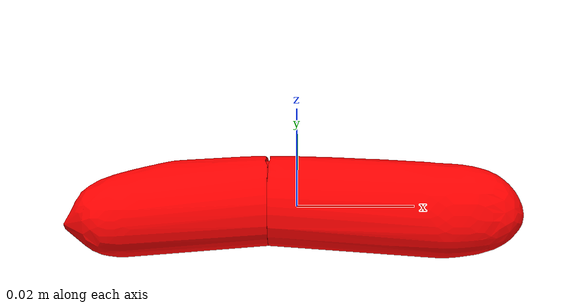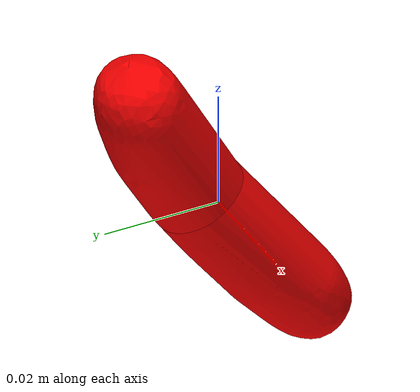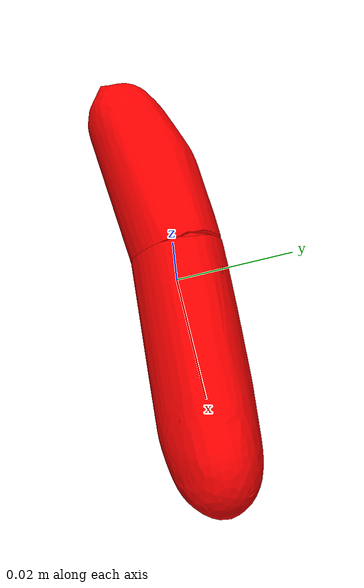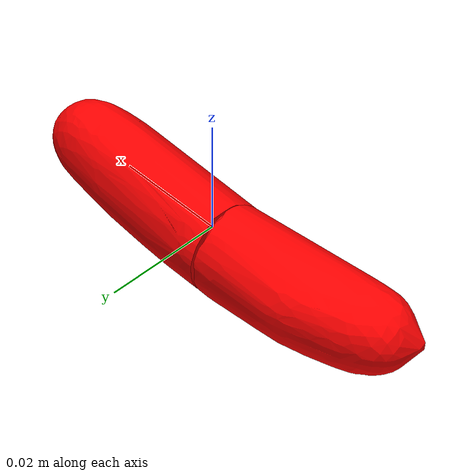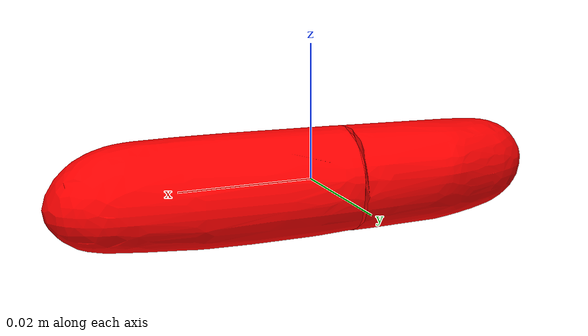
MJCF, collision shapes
<?xml version="1.0" ?>
<mujoco model="pickled_cucumber">
	<compiler meshdir="pickled_cucumber/meshes" texturedir="pickled_cucumber/textures" angle="radian" autolimits="true" balanceinertia="true" boundmass="0.000001" boundinertia="0.000001"/>
	<default>
		<default class="visual">
			<geom contype="0" conaffinity="0"/>
		</default>
		<default class="collision">
			<geom rgba="1.0 0.0 0.0 0.0"/>
		</default>
	</default>
	<asset>
		<mesh name="PickledCucumberFlesh" file="stl/PickledCucumberFlesh.stl" scale="1.0 1.0 1.0"/>
		<mesh name="PickledCucumberFlesh_001" file="stl/PickledCucumberFlesh_001.stl" scale="1.0 1.0 1.0"/>
		<mesh name="PickledCucumberFlesh_002" file="stl/PickledCucumberFlesh_002.stl" scale="1.0 1.0 1.0"/>
		<mesh name="PickledCucumberSeed" file="stl/PickledCucumberSeed.stl" scale="1.0 1.0 1.0"/>
		<mesh name="PickledCucumberSeed_001" file="stl/PickledCucumberSeed_001.stl" scale="1.0 1.0 1.0"/>
		<mesh name="PickledCucumberSeed_002" file="stl/PickledCucumberSeed_002.stl" scale="1.0 1.0 1.0"/>
		<mesh name="PickledCucumberSeed_003" file="stl/PickledCucumberSeed_003.stl" scale="1.0 1.0 1.0"/>
		<mesh name="PickledCucumberSeed_004" file="stl/PickledCucumberSeed_004.stl" scale="1.0 1.0 1.0"/>
		<mesh name="PickledCucumberSeed_005" file="stl/PickledCucumberSeed_005.stl" scale="1.0 1.0 1.0"/>
		<mesh name="PickledCucumberSeed_006" file="stl/PickledCucumberSeed_006.stl" scale="1.0 1.0 1.0"/>
		<mesh name="PickledCucumberSeed_007" file="stl/PickledCucumberSeed_007.stl" scale="1.0 1.0 1.0"/>
		<mesh name="PickledCucumberSeed_008" file="stl/PickledCucumberSeed_008.stl" scale="1.0 1.0 1.0"/>
		<mesh name="PickledCucumberSeed_009" file="stl/PickledCucumberSeed_009.stl" scale="1.0 1.0 1.0"/>
		<mesh name="PickledCucumberSeed_010" file="stl/PickledCucumberSeed_010.stl" scale="1.0 1.0 1.0"/>
		<mesh name="PickledCucumberSeed_011" file="stl/PickledCucumberSeed_011.stl" scale="1.0 1.0 1.0"/>
		<mesh name="PickledCucumberSeed_012" file="stl/PickledCucumberSeed_012.stl" scale="1.0 1.0 1.0"/>
		<mesh name="PickledCucumberSeed_013" file="stl/PickledCucumberSeed_013.stl" scale="1.0 1.0 1.0"/>
		<mesh name="PickledCucumberSeed_014" file="stl/PickledCucumberSeed_014.stl" scale="1.0 1.0 1.0"/>
		<mesh name="PickledCucumberSeed_015" file="stl/PickledCucumberSeed_015.stl" scale="1.0 1.0 1.0"/>
		<mesh name="PickledCucumberSeed_016" file="stl/PickledCucumberSeed_016.stl" scale="1.0 1.0 1.0"/>
		<mesh name="PickledCucumberSeed_017" file="stl/PickledCucumberSeed_017.stl" scale="1.0 1.0 1.0"/>
		<mesh name="PickledCucumberSeed_018" file="stl/PickledCucumberSeed_018.stl" scale="1.0 1.0 1.0"/>
		<mesh name="PickledCucumberSeed_019" file="stl/PickledCucumberSeed_019.stl" scale="1.0 1.0 1.0"/>
		<mesh name="PickledCucumberSeed_020" file="stl/PickledCucumberSeed_020.stl" scale="1.0 1.0 1.0"/>
		<mesh name="PickledCucumberSeed_021" file="stl/PickledCucumberSeed_021.stl" scale="1.0 1.0 1.0"/>
		<mesh name="PickledCucumberSeed_022" file="stl/PickledCucumberSeed_022.stl" scale="1.0 1.0 1.0"/>
		<mesh name="PickledCucumberSeed_023" file="stl/PickledCucumberSeed_023.stl" scale="1.0 1.0 1.0"/>
		<mesh name="PickledCucumberSeed_024" file="stl/PickledCucumberSeed_024.stl" scale="1.0 1.0 1.0"/>
		<mesh name="PickledCucumberSeed_025" file="stl/PickledCucumberSeed_025.stl" scale="1.0 1.0 1.0"/>
		<mesh name="PickledCucumberSeed_026" file="stl/PickledCucumberSeed_026.stl" scale="1.0 1.0 1.0"/>
		<mesh name="PickledCucumberSeed_027" file="stl/PickledCucumberSeed_027.stl" scale="1.0 1.0 1.0"/>
		<mesh name="PickledCucumberSeed_028" file="stl/PickledCucumberSeed_028.stl" scale="1.0 1.0 1.0"/>
		<mesh name="PickledCucumberSeed_029" file="stl/PickledCucumberSeed_029.stl" scale="1.0 1.0 1.0"/>
		<mesh name="PickledCucumberSeed_030" file="stl/PickledCucumberSeed_030.stl" scale="1.0 1.0 1.0"/>
		<mesh name="PickledCucumberSeed_031" file="stl/PickledCucumberSeed_031.stl" scale="1.0 1.0 1.0"/>
		<mesh name="PickledCucumberSeed_032" file="stl/PickledCucumberSeed_032.stl" scale="1.0 1.0 1.0"/>
		<mesh name="PickledCucumberPeel" file="obj/PickledCucumberPeel.obj" scale="1.0 1.0 1.0"/>
		<mesh name="PickledCucumberPeel_001" file="stl/PickledCucumberPeel_001.stl" scale="1.0 1.0 1.0"/>
		<mesh name="PickledCucumberPeel_002" file="stl/PickledCucumberPeel_002.stl" scale="1.0 1.0 1.0"/>
		<material name="M_PickledCucumberFlesh" rgba="0.6622999906539917 0.6575000286102295 0.5468000173568726 0.980400025844574" emission="0.0"/>
		<material name="M_PickledCucumberSeed" rgba="0.7447999715805054 0.7526999711990356 0.7329999804496765 1.0" emission="0.0"/>
		<material name="M_PickledCucumberPeel" texture="T_PickledCucumberPeel"/>
		<texture name="T_PickledCucumberPeel" type="2d" file="T_PickledCucumberPeel.png"/>
	</asset>
	<worldbody>
		<body name="pickled_cucumber" pos="0.0 0.0 0.0" quat="1.0 0.0 0.0 0.0">
			<body name="pickled_cucumber_flesh" pos="0.0 0.0 0.0" quat="1.0 0.0 0.0 0.0">
				<inertial mass="0.00818063784390688" pos="0.0007146873977035284 -0.0001645844749873504 0.00018500469741411507" quat="0.9983373880386353 0.0575854554772377 0.0006288753938861191 0.0024341389071196318" diaginertia="1.6322070450769388e-07 3.0060557492106454e-06 3.01512000078219e-06"/>
				<geom name="PickledCucumberFlesh" type="mesh" pos="0.0 0.0 0.0" quat="1.0 0.0 0.0 0.0" mesh="PickledCucumberFlesh" material="M_PickledCucumberFlesh" class="visual"/>
				<geom name="PickledCucumberFlesh_001" type="mesh" pos="0.0 0.0 0.0" quat="1.0 0.0 0.0 0.0" mesh="PickledCucumberFlesh_001" class="collision"/>
				<geom name="PickledCucumberFlesh_002" type="mesh" pos="0.0 0.0 0.0" quat="1.0 0.0 0.0 0.0" mesh="PickledCucumberFlesh_002" class="collision"/>
			</body>
			<body name="pickled_cucumber_peel" pos="0.0 0.0 0.0" quat="1.0 0.0 0.0 0.0">
				<inertial mass="0.020253026857972145" pos="0.0007119235233403742 0.00022078375332057476 -0.00022728988551534712" quat="0.9985897541046143 0.05298673361539841 0.0011286938097327948 0.0031084679067134857" diaginertia="4.903369017483783e-07 7.81192193244351e-06 7.839219506422523e-06"/>
				<geom name="PickledCucumberPeel" type="mesh" pos="0.0 0.0 0.0" quat="1.0 0.0 0.0 0.0" mesh="PickledCucumberPeel" material="M_PickledCucumberPeel" class="visual"/>
				<geom name="PickledCucumberPeel_001" type="mesh" pos="0.0 0.0 0.0" quat="1.0 0.0 0.0 0.0" mesh="PickledCucumberPeel_001" class="collision"/>
				<geom name="PickledCucumberPeel_002" type="mesh" pos="0.0 0.0 0.0" quat="1.0 0.0 0.0 0.0" mesh="PickledCucumberPeel_002" class="collision"/>
			</body>
			<body name="pickled_cucumber_seed" pos="0.0 0.0 0.0" quat="1.0 0.0 0.0 0.0">
				<inertial mass="0.00022778374841436744" pos="-0.0006211170111782849 -0.0004471162101253867 0.0004769424849655479" quat="0.9993292689323425 -0.03660851716995239 0.0008699760655872524 -0.00014944636495783925" diaginertia="3.3809444133225952e-09 7.695172854482735e-08 7.745622099264438e-08"/>
				<geom name="PickledCucumberSeed" type="mesh" pos="0.0 0.0 0.0" quat="1.0 0.0 0.0 0.0" mesh="PickledCucumberSeed" material="M_PickledCucumberSeed" class="visual"/>
				<geom name="PickledCucumberSeed_001" type="mesh" pos="0.0 0.0 0.0" quat="1.0 0.0 0.0 0.0" mesh="PickledCucumberSeed_001" class="collision"/>
				<geom name="PickledCucumberSeed_002" type="mesh" pos="0.0 0.0 0.0" quat="1.0 0.0 0.0 0.0" mesh="PickledCucumberSeed_002" class="collision"/>
				<geom name="PickledCucumberSeed_003" type="mesh" pos="0.0 0.0 0.0" quat="1.0 0.0 0.0 0.0" mesh="PickledCucumberSeed_003" class="collision"/>
				<geom name="PickledCucumberSeed_004" type="mesh" pos="0.0 0.0 0.0" quat="1.0 0.0 0.0 0.0" mesh="PickledCucumberSeed_004" class="collision"/>
				<geom name="PickledCucumberSeed_005" type="mesh" pos="0.0 0.0 0.0" quat="1.0 0.0 0.0 0.0" mesh="PickledCucumberSeed_005" class="collision"/>
				<geom name="PickledCucumberSeed_006" type="mesh" pos="0.0 0.0 0.0" quat="1.0 0.0 0.0 0.0" mesh="PickledCucumberSeed_006" class="collision"/>
				<geom name="PickledCucumberSeed_007" type="mesh" pos="0.0 0.0 0.0" quat="1.0 0.0 0.0 0.0" mesh="PickledCucumberSeed_007" class="collision"/>
				<geom name="PickledCucumberSeed_008" type="mesh" pos="0.0 0.0 0.0" quat="1.0 0.0 0.0 0.0" mesh="PickledCucumberSeed_008" class="collision"/>
				<geom name="PickledCucumberSeed_009" type="mesh" pos="0.0 0.0 0.0" quat="1.0 0.0 0.0 0.0" mesh="PickledCucumberSeed_009" class="collision"/>
				<geom name="PickledCucumberSeed_010" type="mesh" pos="0.0 0.0 0.0" quat="1.0 0.0 0.0 0.0" mesh="PickledCucumberSeed_010" class="collision"/>
				<geom name="PickledCucumberSeed_011" type="mesh" pos="0.0 0.0 0.0" quat="1.0 0.0 0.0 0.0" mesh="PickledCucumberSeed_011" class="collision"/>
				<geom name="PickledCucumberSeed_012" type="mesh" pos="0.0 0.0 0.0" quat="1.0 0.0 0.0 0.0" mesh="PickledCucumberSeed_012" class="collision"/>
				<geom name="PickledCucumberSeed_013" type="mesh" pos="0.0 0.0 0.0" quat="1.0 0.0 0.0 0.0" mesh="PickledCucumberSeed_013" class="collision"/>
				<geom name="PickledCucumberSeed_014" type="mesh" pos="0.0 0.0 0.0" quat="1.0 0.0 0.0 0.0" mesh="PickledCucumberSeed_014" class="collision"/>
				<geom name="PickledCucumberSeed_015" type="mesh" pos="0.0 0.0 0.0" quat="1.0 0.0 0.0 0.0" mesh="PickledCucumberSeed_015" class="collision"/>
				<geom name="PickledCucumberSeed_016" type="mesh" pos="0.0 0.0 0.0" quat="1.0 0.0 0.0 0.0" mesh="PickledCucumberSeed_016" class="collision"/>
				<geom name="PickledCucumberSeed_017" type="mesh" pos="0.0 0.0 0.0" quat="1.0 0.0 0.0 0.0" mesh="PickledCucumberSeed_017" class="collision"/>
				<geom name="PickledCucumberSeed_018" type="mesh" pos="0.0 0.0 0.0" quat="1.0 0.0 0.0 0.0" mesh="PickledCucumberSeed_018" class="collision"/>
				<geom name="PickledCucumberSeed_019" type="mesh" pos="0.0 0.0 0.0" quat="1.0 0.0 0.0 0.0" mesh="PickledCucumberSeed_019" class="collision"/>
				<geom name="PickledCucumberSeed_020" type="mesh" pos="0.0 0.0 0.0" quat="1.0 0.0 0.0 0.0" mesh="PickledCucumberSeed_020" class="collision"/>
				<geom name="PickledCucumberSeed_021" type="mesh" pos="0.0 0.0 0.0" quat="1.0 0.0 0.0 0.0" mesh="PickledCucumberSeed_021" class="collision"/>
				<geom name="PickledCucumberSeed_022" type="mesh" pos="0.0 0.0 0.0" quat="1.0 0.0 0.0 0.0" mesh="PickledCucumberSeed_022" class="collision"/>
				<geom name="PickledCucumberSeed_023" type="mesh" pos="0.0 0.0 0.0" quat="1.0 0.0 0.0 0.0" mesh="PickledCucumberSeed_023" class="collision"/>
				<geom name="PickledCucumberSeed_024" type="mesh" pos="0.0 0.0 0.0" quat="1.0 0.0 0.0 0.0" mesh="PickledCucumberSeed_024" class="collision"/>
				<geom name="PickledCucumberSeed_025" type="mesh" pos="0.0 0.0 0.0" quat="1.0 0.0 0.0 0.0" mesh="PickledCucumberSeed_025" class="collision"/>
				<geom name="PickledCucumberSeed_026" type="mesh" pos="0.0 0.0 0.0" quat="1.0 0.0 0.0 0.0" mesh="PickledCucumberSeed_026" class="collision"/>
				<geom name="PickledCucumberSeed_027" type="mesh" pos="0.0 0.0 0.0" quat="1.0 0.0 0.0 0.0" mesh="PickledCucumberSeed_027" class="collision"/>
				<geom name="PickledCucumberSeed_028" type="mesh" pos="0.0 0.0 0.0" quat="1.0 0.0 0.0 0.0" mesh="PickledCucumberSeed_028" class="collision"/>
				<geom name="PickledCucumberSeed_029" type="mesh" pos="0.0 0.0 0.0" quat="1.0 0.0 0.0 0.0" mesh="PickledCucumberSeed_029" class="collision"/>
				<geom name="PickledCucumberSeed_030" type="mesh" pos="0.0 0.0 0.0" quat="1.0 0.0 0.0 0.0" mesh="PickledCucumberSeed_030" class="collision"/>
				<geom name="PickledCucumberSeed_031" type="mesh" pos="0.0 0.0 0.0" quat="1.0 0.0 0.0 0.0" mesh="PickledCucumberSeed_031" class="collision"/>
				<geom name="PickledCucumberSeed_032" type="mesh" pos="0.0 0.0 0.0" quat="1.0 0.0 0.0 0.0" mesh="PickledCucumberSeed_032" class="collision"/>
			</body>
		</body>
	</worldbody>
	<equality/>
</mujoco>
